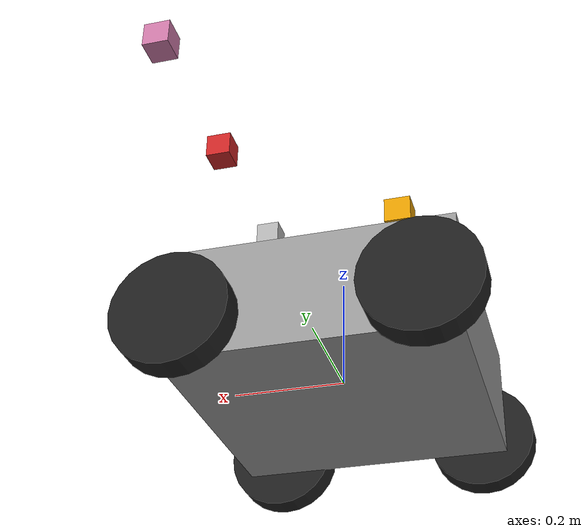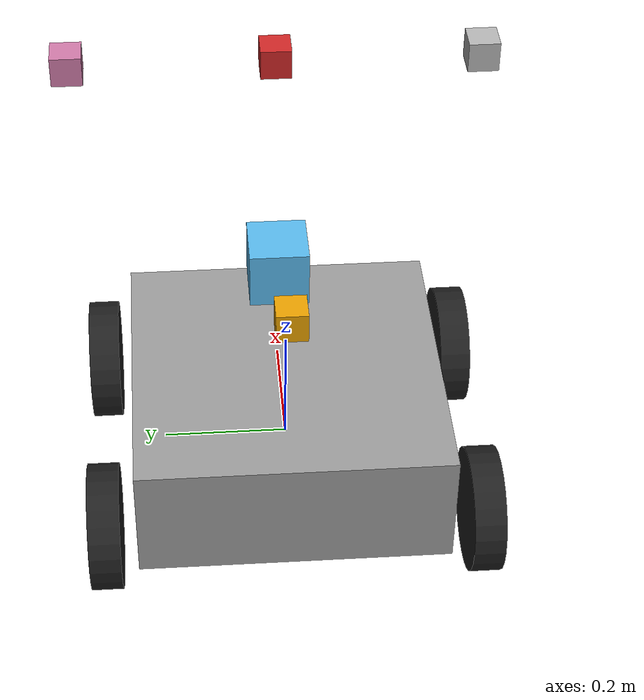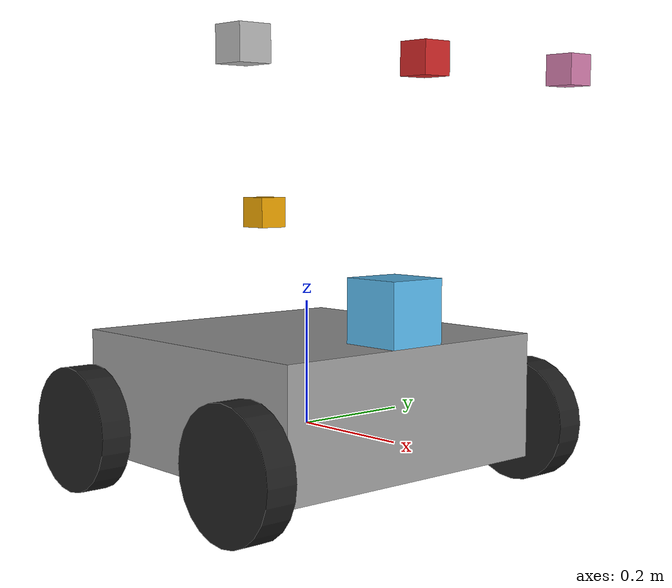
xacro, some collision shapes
<?xml version='1.0'?>

<robot name="wanderer" xmlns:xacro="http://www.ros.org/wiki/xacro">
	<xacro:property name="robot_name" value="wanderer" />
	<xacro:property name="robot_chassis_mass" value="15" />
	<xacro:property name="robot_chassis_length" value="0.2" />
	<xacro:property name="robot_chassis_radius" value="0.25" />
	<xacro:property name="robot_caster_wheel_radius" value="0.05" />
	<xacro:property name="robot_caster_wheel_radius_collision" value="0.0499" />

	<xacro:property name="robot_wheel_mass" value="5" />
	<xacro:property name="robot_wheel_length" value="0.05" />
	<xacro:property name="robot_wheel_radius" value="0.1" />

	<xacro:property name="camera_mass" value="0.1" />
	<xacro:property name="lidar_mass" value="1e-5"/>

	<!-- Make Chassis of Bot -->
	<link name="chassis">
		<pose>0 0 0.1 0 0 0</pose>

		<inertial>
			<mass value="${robot_chassis_mass}" />
			<origin xyz="0.0 0 0" rpy=" 0 0 0" />

			<inertia
				ixx="0.147116667" ixy="0" ixz="0"
				iyy="0.334951167" iyz="0"
				izz="0.3978345"
			/>
		</inertial>

		<collision name="collision">
			<origin xyz="0 0 0.05" rpy=" 0 0 0" />
			<geometry>
				<box size="0.5 0.5 0.2" />
			</geometry>
		</collision>

		<visual name="chassis_visual">
			<origin xyz="0 0 0.05" rpy=" 0 0 0" />
			<geometry>
				<box size="0.5 0.5 0.2" />
			</geometry>

		</visual>

	</link>

	<!-- Right Wheel Back -->
	<link name="right_wheel_back">
		<inertial>
			<mass value="${robot_wheel_mass}" />
			<origin xyz="0 0 0" rpy="0 1.5707 1.5707" />
			<inertia
				ixx="0.1" ixy="0.0" ixz="0.0"
				iyy="0.1" iyz="0.0"
				izz="0.1"
			/>
		</inertial>

		<visual>
			<origin xyz="0 0 0" rpy="0 1.5707 1.5707" />
			<geometry>
				<cylinder radius="${robot_wheel_radius}" length="${robot_wheel_length}" />
			</geometry>
		</visual>

		<collision>
			<origin xyz="0 0 0" rpy="0 1.5707 1.5707" />
			<geometry>
				<cylinder radius="${robot_wheel_radius}" length="${robot_wheel_length}" />
			</geometry>
		</collision>

	</link>

	<!-- Right Wheel Front-->
	<link name="right_wheel_front">
		<inertial>
			<mass value="${robot_wheel_mass}" />
			<origin xyz="0 0 0" rpy="0 1.5707 1.5707" />
			<inertia
				ixx="0.1" ixy="0.0" ixz="0.0"
				iyy="0.1" iyz="0.0"
				izz="0.1"
			/>
		</inertial>

		<visual>
			<origin xyz="0 0 0" rpy="0 1.5707 1.5707" />
			<geometry>
				<cylinder radius="${robot_wheel_radius}" length="${robot_wheel_length}" />
			</geometry>
		</visual>

		<collision>
			<origin xyz="0 0 0" rpy="0 1.5707 1.5707" />
			<geometry>
				<cylinder radius="${robot_wheel_radius}" length="${robot_wheel_length}" />
			</geometry>
		</collision>

	</link>

	<!-- Left wheel Back-->
	<link name="left_wheel_back">
		<inertial>
			<mass value="${robot_wheel_mass}" />
			<origin xyz="0 0 0" rpy="0 1.5707 1.5707" />
			<inertia
				ixx="0.1" ixy="0.0" ixz="0.0"
				iyy="0.1" iyz="0.0"
				izz="0.1"
			/>
		</inertial>

		<visual>
			<origin xyz="0 0 0" rpy="0 1.5707 1.5707" />
			<geometry>
				<cylinder radius="${robot_wheel_radius}" length="${robot_wheel_length}" />
			</geometry>
		</visual>

		<collision>
			<origin xyz="0 0 0" rpy="0 1.5707 1.5707" />
			<geometry>
				<cylinder radius="${robot_wheel_radius}" length="${robot_wheel_length}" />
			</geometry>
		</collision>

	</link>

	<!-- Left wheel Front-->
	<link name="left_wheel_front">
		<inertial>
			<mass value="${robot_wheel_mass}" />
			<origin xyz="0 0 0" rpy="0 1.5707 1.5707" />
			<inertia
				ixx="0.1" ixy="0.0" ixz="0.0"
				iyy="0.1" iyz="0.0"
				izz="0.1"
			/>
		</inertial>

		<visual>
			<origin xyz="0 0 0" rpy="0 1.5707 1.5707" />
			<geometry>
				<cylinder radius="${robot_wheel_radius}" length="${robot_wheel_length}" />
			</geometry>
		</visual>

		<collision>
			<origin xyz="0 0 0" rpy="0 1.5707 1.5707" />
			<geometry>
				<cylinder radius="${robot_wheel_radius}" length="${robot_wheel_length}" />
			</geometry>
		</collision>

	</link>

	<!-- Front Camera -->
	<link name="camera_1">
		<inertial>
			<mass value="${camera_mass}" />
			<origin xyz="0 0 0" rpy="0 0 0" />
			<inertia
				ixx="1e-6" ixy="0.0" ixz="0.0"
				iyy="1e-6" iyz="0.0"
				izz="1e-6"
			/>
		</inertial>

		<visual>
			<origin xyz="0 0 0" rpy="0 0 0" />
			<geometry>
				<box size="0.05 0.05 0.05" />
			</geometry>
		</visual>

		<collision>
			<origin xyz="0 0 0" rpy="0 0 0" />
			<geometry>
				<box size="0.05 0.05 0.05" />
			</geometry>
		</collision>
	</link>

	<!-- Left Camera -->
	<link name="camera_2">
		<inertial>
			<mass value="${camera_mass}" />
			<origin xyz="0 0 0" rpy="0 0 0" />
			<inertia
				ixx="1e-6" ixy="0.0" ixz="0.0"
				iyy="1e-6" iyz="0.0"
				izz="1e-6"
			/>
		</inertial>

		<visual>
			<origin xyz="0 0 0" rpy="0 0 0" />
			<geometry>
				<box size="0.05 0.05 0.05" />
			</geometry>
		</visual>

		<collision>
			<origin xyz="0 0 0" rpy="0 0 0" />
			<geometry>
				<box size="0.05 0.05 0.05" />
			</geometry>
		</collision>
	</link>

	<!-- Right Camera -->
	<link name="camera_3">
		<inertial>
			<mass value="${camera_mass}" />
			<origin xyz="0 0 0" rpy="0 0 0" />
			<inertia
				ixx="1e-6" ixy="0.0" ixz="0.0"
				iyy="1e-6" iyz="0.0"
				izz="1e-6"
			/>
		</inertial>

		<visual>
			<origin xyz="0 0 0" rpy="0 0 0" />
			<geometry>
				<box size="0.05 0.05 0.05" />
			</geometry>
		</visual>

		<collision>
			<origin xyz="0 0 0" rpy="0 0 0" />
			<geometry>
				<box size="0.05 0.05 0.05" />
			</geometry>
		</collision>
	</link>

	<!-- Back Camera -->
	<link name="camera_4">
		<inertial>
			<mass value="${camera_mass}" />
			<origin xyz="0 0 0" rpy="0 0 0" />
			<inertia
				ixx="1e-6" ixy="0.0" ixz="0.0"
				iyy="1e-6" iyz="0.0"
				izz="1e-6"
			/>
		</inertial>

		<visual>
			<origin xyz="0 0 0" rpy="0 0 0" />
			<geometry>
				<box size="0.05 0.05 0.05" />
			</geometry>
		</visual>

		<collision>
			<origin xyz="0 0 0" rpy="0 0 0" />
			<geometry>
				<box size="0.05 0.05 0.05" />
			</geometry>
		</collision>
	</link>

	<!-- Lidar -->
	<link name="lidar_link">
		<inertial>
			<mass value="${lidar_mass}"/>
			<origin xyz="0 0 0" rpy="0 0 0"/>

			<inertia
				ixx="1e-6" ixy="0.0" ixz="0.0"
				iyy="1e-6" iyz="0.0"
				izz="1e-6"
			/>
		</inertial>

		<visual>
			<origin xyz="0 0 0" rpy="0 0 0"/>
			<geometry>
				<mesh filename="package://rover_sim/meshes/hokuyo.dae"/>
			</geometry>
		</visual>

		<collision>
			<origin xyz="0 0 0" rpy="0 0 0"/>
			<geometry>
				<box size="0.1 0.1 0.1"/>
			</geometry>
		</collision>
	</link>

	<!-- Project center to the ground -->
	<link name="robot_footprint"></link>

	<!-- Define Joints -->

	<!-- Right Wheel Joint Back-->
	<joint type="continuous" name="right_wheel_hinge_back">
		<origin xyz="-0.2 -0.30 0" rpy="0 0 0" />
		<parent link="chassis" />
		<child link="right_wheel_back" />
		<axis xyz="0 1 0" rpy="0 0 0" />
		<limit effort="10000" velocity="1000" />
		<dynamics damping="1.0" friction="1.0" />
	</joint>

	<!-- Right Wheel Joint Front-->
	<joint type="continuous" name="right_wheel_hinge_front">
		<origin xyz="0.2 -0.30 0" rpy="0 0 0" />
		<parent link="chassis" />
		<child link="right_wheel_front" />
		<axis xyz="0 1 0" rpy="0 0 0" />
		<limit effort="10000" velocity="1000" />
		<dynamics damping="1.0" friction="1.0" />
	</joint>

	<!-- Left Wheel Joint Back-->
	<joint type="continuous" name="left_wheel_hinge_back">
		<origin xyz="-0.2 0.30 0" rpy="0 0 0" />
		<parent link="chassis" />
		<child link="left_wheel_back" />
		<axis xyz="0 1 0" rpy="0 0 0" />
		<limit effort="10000" velocity="1000" />
		<dynamics damping="1.0" friction="1.0" />
	</joint>

	<!-- Left Wheel Joint Front-->
	<joint type="continuous" name="left_wheel_hinge_front">
		<origin xyz="0.2 0.30 0" rpy="0 0 0" />
		<parent link="chassis" />
		<child link="left_wheel_front" />
		<axis xyz="0 1 0" rpy="0 0 0" />
		<limit effort="10000" velocity="1000" />
		<dynamics damping="1.0" friction="1.0" />
	</joint>

	<!-- Camera_1 Joint -->
	<joint name="camera_1_joint" type="fixed">
		<origin xyz="0.26 0 .57" rpy="0 0 0" />
		<parent link="chassis" />
		<child link="camera_1" />
		<axis xyz="1 0 0" />
	</joint>

	<!-- Camera_2 Joint -->
	<joint name="camera_2_joint" type="fixed">
		<origin xyz="0.26 0.33 .57" rpy="0 0 1.57" />
		<parent link="chassis" />
		<child link="camera_2" />
		<axis xyz="1 0 0" />
	</joint>

	<!-- Camera_3 Joint -->
	<joint name="camera_3_joint" type="fixed">
		<origin xyz="0.26 -0.33 .57" rpy="0 0 -1.57" />
		<parent link="chassis" />
		<child link="camera_3" />
		<axis xyz="1 0 0" />
	</joint>

	<!-- Camera_4 Joint -->
	<joint name="camera_4_joint" type="fixed">
		<origin xyz="-0.11 0 .34" rpy="0 0 3.14" />
		<parent link="chassis" />
		<child link="camera_4" />
		<axis xyz="1 0 0" />
	</joint>

	<!-- Lidar Joint -->
	<joint name="lidar_joint" type="fixed">
		<origin xyz="0.2 0 0.2" rpy="0 0 0" />
		<parent link="chassis"/>
		<child link="lidar_link" />
		<axis xyz="0 1 0"/>
	</joint>

	<joint name="robot_footprint_joint" type="fixed">
		<origin xyz="0 0 0" rpy="0 0 0" />
		<parent link="robot_footprint" />
		<child link="chassis" />
	</joint>

	<!-- Color of bot -->
	<gazebo reference="left_wheel_front">
		<material>Gazebo/Black</material>
		<kp>1000000.0</kp> <!-- kp and kd for rubber -->
		<kd>100.0</kd>
		<mu1>1.0</mu1>
		<mu2>1.0</mu2>
		<maxVel>1.0</maxVel>
		<minDepth>0.00</minDepth>
	</gazebo>

	<gazebo reference="left_wheel_back">
		<material>Gazebo/Black</material>
		<kp>1000000.0</kp> <!-- kp and kd for rubber -->
		<kd>100.0</kd>
		<mu1>1.0</mu1>
		<mu2>1.0</mu2>
		<maxVel>1.0</maxVel>
		<minDepth>0.00</minDepth>
	</gazebo>

	<gazebo reference="right_wheel_front">
		<material>Gazebo/Black</material>
		<kp>1000000.0</kp> <!-- kp and kd for rubber -->
		<kd>100.0</kd>
		<mu1>1.0</mu1>
		<mu2>1.0</mu2>
		<maxVel>1.0</maxVel>
		<minDepth>0.00</minDepth>
	</gazebo>
	<gazebo reference="right_wheel_back">
		<material>Gazebo/Black</material>
		<kp>1000000.0</kp> <!-- kp and kd for rubber -->
		<kd>100.0</kd>
		<mu1>1.0</mu1>
		<mu2>1.0</mu2>
		<maxVel>1.0</maxVel>
		<minDepth>0.00</minDepth>
	</gazebo>

	<gazebo reference="camera_1">
		<material>Gazebo/Red</material>
	</gazebo>

	<gazebo reference="chassis">
		<material>Gazebo/Grey</material>
	</gazebo>

	<!-- Motor, Camera and Lidar Simulation -->
	<xacro:include filename="$(find rover_sim)/urdf/wanderer.gazebo" />

</robot>
